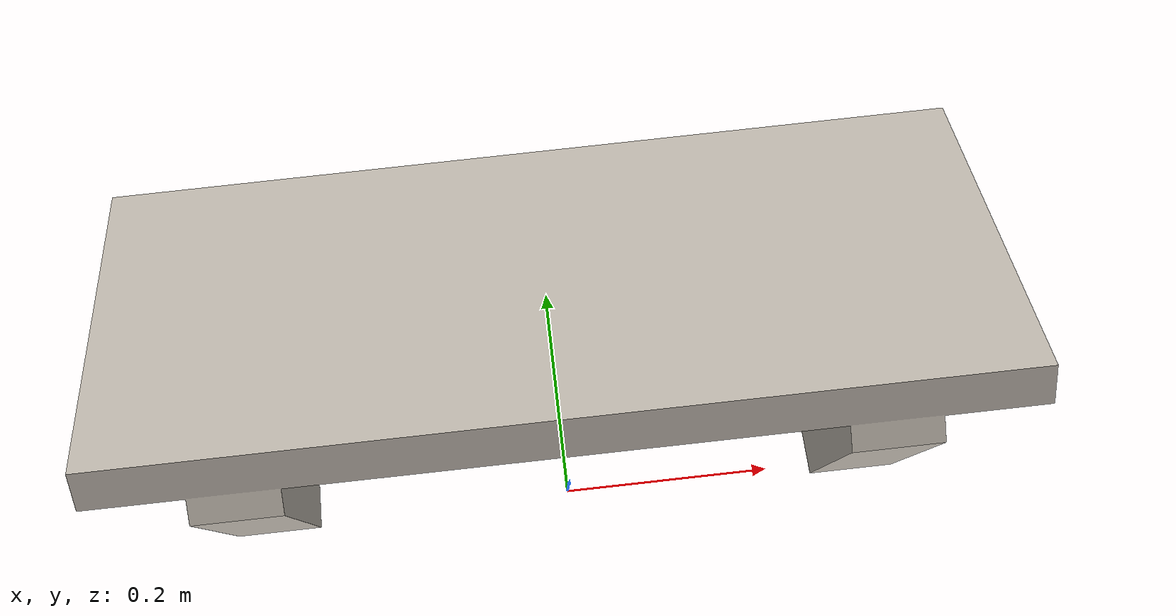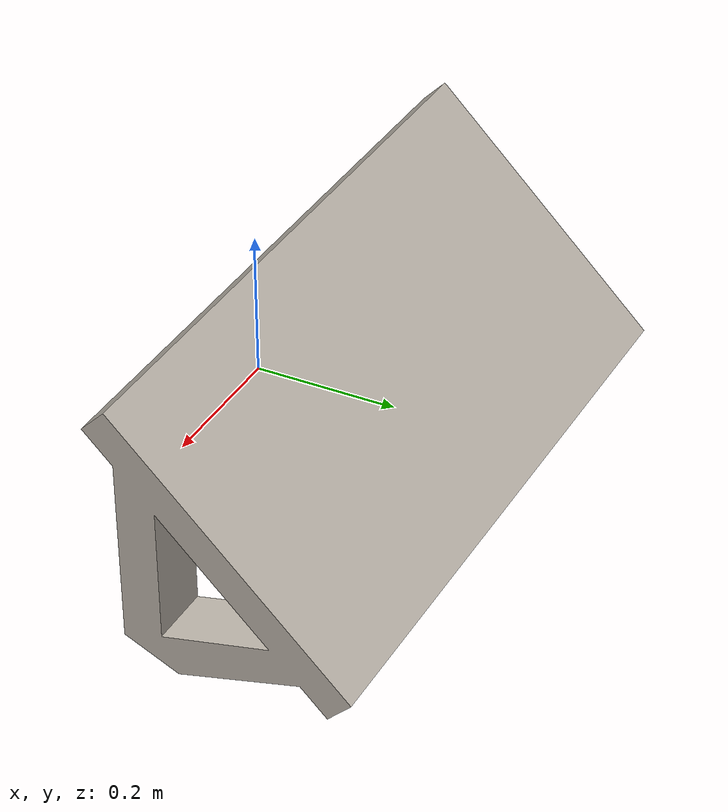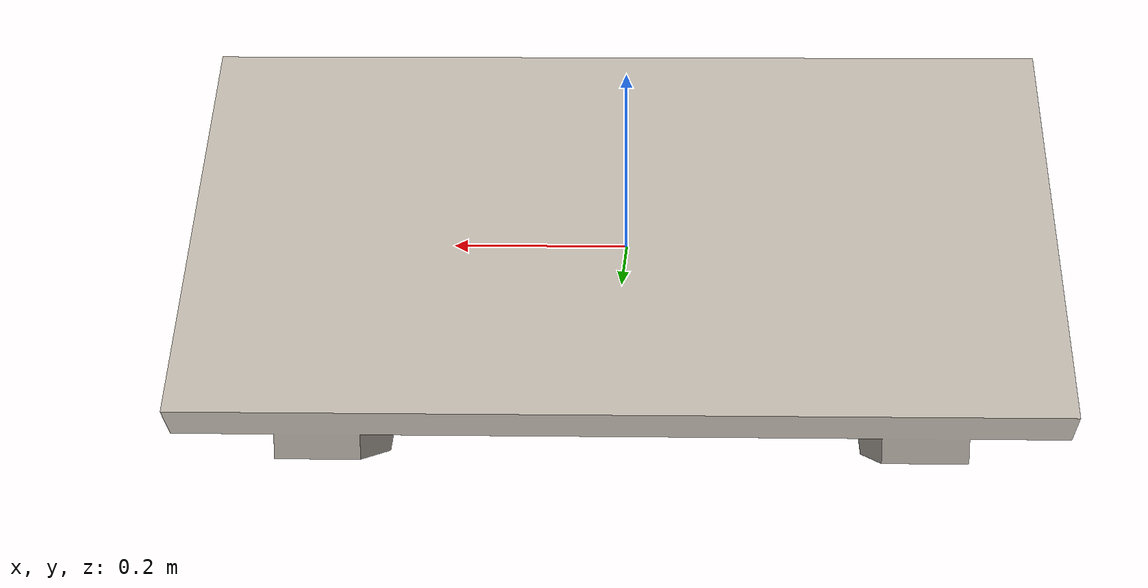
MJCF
<mujoco model="solarpanel">
  <default>
    <default class="visual">
      <geom group="2" type="mesh" contype="0" conaffinity="0" />
    </default>
    <default class="collision">
      <geom group="3" type="mesh" />
    </default>
  </default>
  <asset>
    <texture type="2d" name="solarpanel_spacebits_texture" file="spacebits_texture.png" />
    <material name="solarpanel_spacebits_texture" texture="solarpanel_spacebits_texture" specular="0.50196078" shininess="0.15999998099999999" />
    <mesh file="solarpanel.obj" name="solarpanel_solarpanel" />
  </asset>
  <worldbody>
    <body name="solarpanel">
      <geom material="solarpanel_spacebits_texture" mesh="solarpanel_solarpanel" class="visual" />
      <geom mesh="solarpanel_solarpanel" class="collision" />
    </body>
  </worldbody>
</mujoco>
